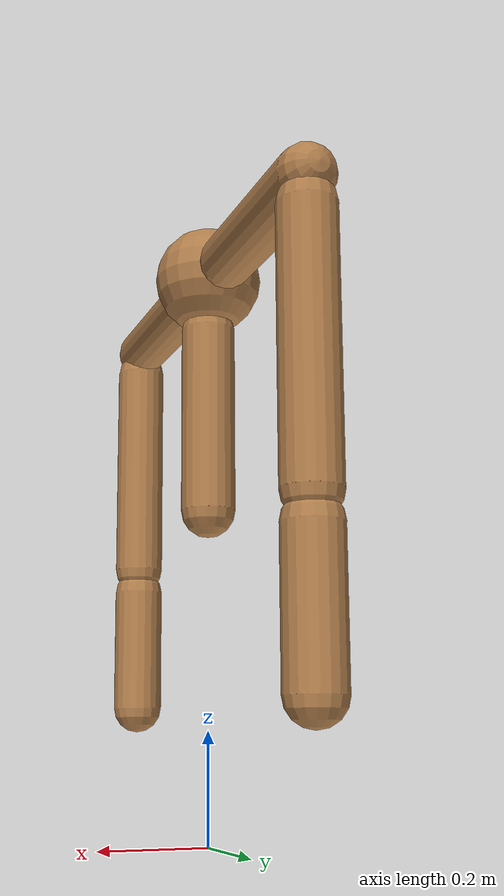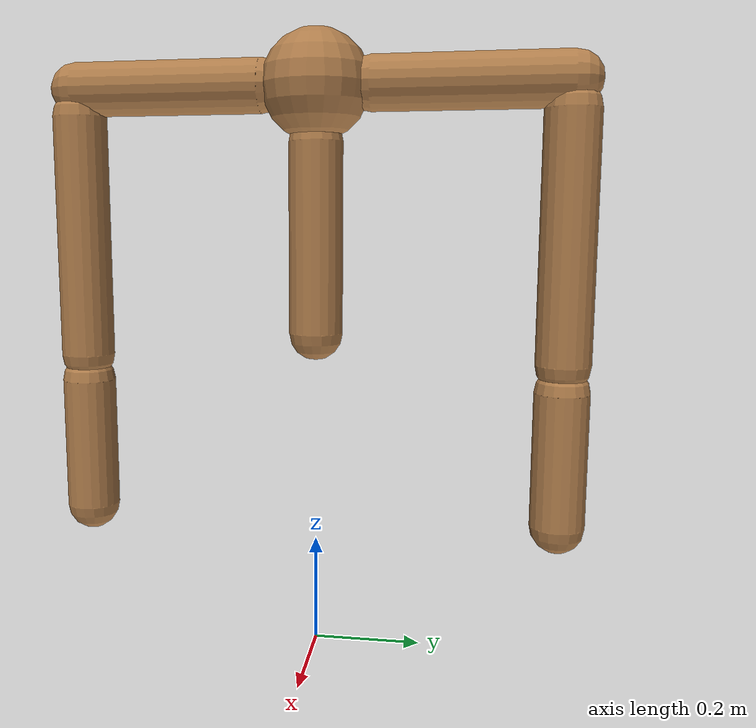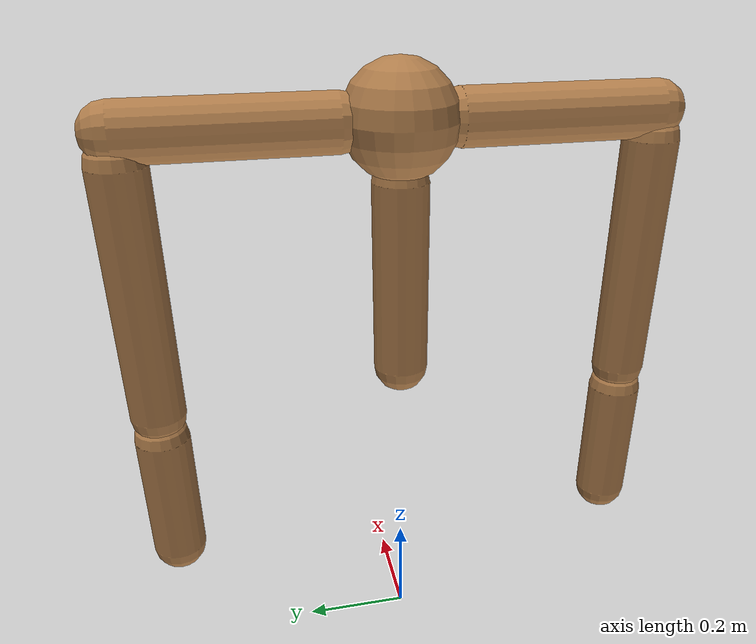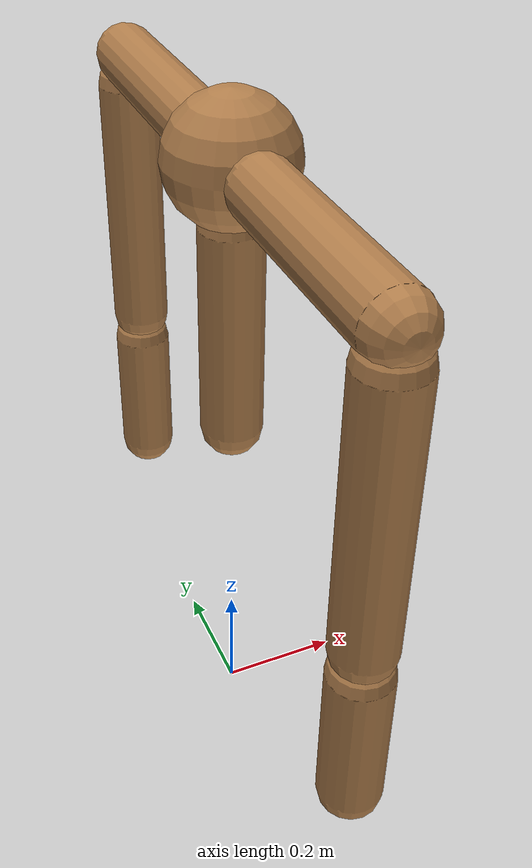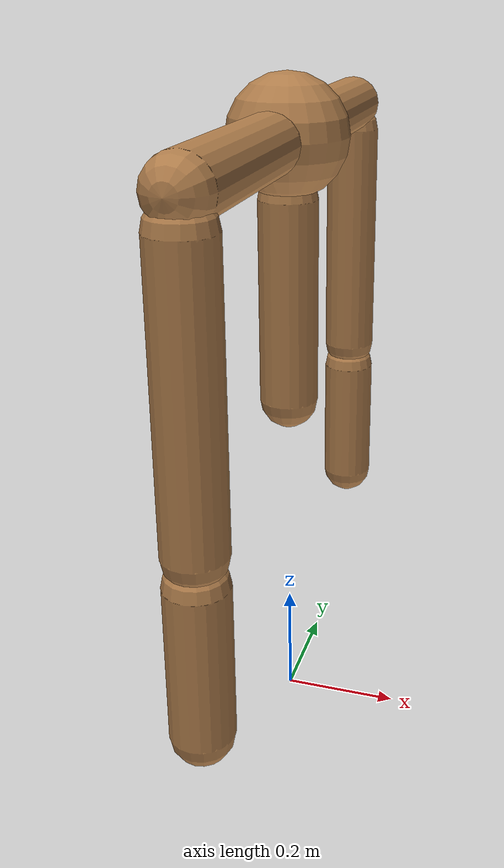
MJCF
<?xml version='1.0' encoding='UTF-8'?>
<!-- Universal Animal Template: unimal -->
<mujoco model="unimal">
  <compiler angle="degree"/>
  <size njmax="2000" nconmax="500"/>
  <option timestep=".005">
    <flag filterparent="disable"/>
  </option>
  <!-- Common defaults to make search space tractable -->
  <default>
    <!-- Define motor defaults -->
    <motor ctrlrange="-1 1" ctrllimited="true"/>
    <!-- Define joint defaults -->
    <default class="normal_joint">
      <joint type="hinge" damping="1" stiffness="1" armature="1" limited="true" range="-120 120" solimplimit="0 0.99 0.01"/>
    </default>
    <default class="walker_joint">
      <joint type="hinge" damping="0.2" stiffness="1" armature=".01" limited="true" range="-120 120" solimplimit="0 0.99 0.01"/>
    </default>
    <default class="stiff_joint">
      <joint type="hinge" damping="5" stiffness="10" armature=".01" limited="true" solimplimit="0 0.99 0.01"/>
    </default>
    <default class="free">
      <joint limited="false" damping="0" armature="0" stiffness="0"/>
    </default>
    <default class="growth_site">
      <site size="1e-6 1e-6 1e-6"/>
    </default>
    <default class="torso_growth_site">
      <site size="1e-6 1e-6 1e-6"/>
    </default>
    <default class="mirror_growth_site">
      <site size="1e-6 1e-6 1e-6"/>
    </default>
    <default class="btm_pos_site">
      <site size="1e-6 1e-6 1e-6"/>
    </default>
    <default class="box_face_site">
      <site size="1e-6 1e-6 1e-6"/>
    </default>
    <default class="imu_vel">
      <site type="box" size="0.05" rgba="1 0 0 0"/>
    </default>
    <default class="touch_site">
      <site group="3" rgba="0 0 1 .3"/>
    </default>
    <default class="food_site">
      <site material="food" size="0.15"/>
    </default>
    <!-- Define geom defaults -->
    <geom type="capsule" condim="3" friction="0.7 0.1 0.1" material="self"/>
  </default>
  <worldbody>
    <light diffuse="1 1 1" directional="true" exponent="1" pos="0 0 8" specular="0.1 0.1 0.1" dir="0 0 -1"/>
    <!-- Programatically generated xml goes here -->
    <body name="torso/0" pos="0 0 1.05">
      <joint name="root" type="free" class="free"/>
      <site name="root" class="imu_vel"/>
      <geom name="torso/0" type="sphere" size="0.1" condim="3" density="700"/>
      <camera name="side" pos="0 -7 2" xyaxes="1 0 0 0 1 2" mode="trackcom"/>
      <site name="torso/0" class="growth_site" pos="0 0 0"/>
      <site name="torso/btm_pos/0" class="btm_pos_site" pos="0 0 -0.1"/>
      <site name="torso/touch/0" class="touch_site" size="0.11"/>
      <site name="torso/vertical/0" class="torso_growth_site" pos="0 0 -0.1"/>
      <body name="limb/0" pos="0.0 0.1 0.0">
        <joint name="limbx/0" type="hinge" class="normal_joint" range="-90 0" pos="0.0 -0.05 0.0" axis="1.0 0.0 0.0"/>
        <geom name="limb/0" type="capsule" fromto="0.0 0.0 0.0 0.0 0.35 0.0" size="0.05" density="600"/>
        <site name="limb/mid/0" class="mirror_growth_site" pos="0.0 0.2 0.0"/>
        <site name="limb/btm/0" class="mirror_growth_site" pos="0.0 0.35 0.0"/>
        <site name="limb/btm_pos/0" class="btm_pos_site" pos="0.0 0.35 0.0"/>
        <site name="limb/touch/0" class="touch_site" size="0.060000000000000005" fromto="0.0 0.0 0.0 0.0 0.35 0.0" type="capsule"/>
        <body name="limb/26" pos="0.0 0.35 -0.05">
          <joint name="limbx/26" type="hinge" class="normal_joint" range="0 30" pos="0.0 0.0 0.05" axis="1.0 0.0 0.0"/>
          <geom name="limb/26" type="capsule" fromto="0.0 0.0 0.0 0.0 0.0 -0.45" size="0.05" density="600"/>
          <site name="limb/mid/26" class="mirror_growth_site" pos="0.0 0.0 -0.25"/>
          <site name="limb/btm/26" class="mirror_growth_site" pos="0.0 0.0 -0.45"/>
          <site name="limb/btm_pos/26" class="btm_pos_site" pos="0.0 0.0 -0.5"/>
          <site name="limb/touch/26" class="touch_site" size="0.060000000000000005" fromto="0.0 0.0 0.0 0.0 0.0 -0.45" type="capsule"/>
          <body name="limb/28" pos="0.0 0.0 -0.5">
            <joint name="limbx/28" type="hinge" class="normal_joint" range="-45 0" pos="0.0 0.0 0.05" axis="1.0 0.0 0.0"/>
            <joint name="limby/28" type="hinge" class="normal_joint" range="-60 0" pos="0.0 0.0 0.05" axis="0.0 1.0 0.0"/>
            <geom name="limb/28" type="capsule" fromto="0.0 0.0 0.0 0.0 0.0 -0.25" size="0.05" density="600"/>
            <site name="limb/mid/28" class="mirror_growth_site" pos="0.0 0.0 -0.15"/>
            <site name="limb/btm/28" class="mirror_growth_site" pos="0.0 0.0 -0.25"/>
            <site name="limb/btm_pos/28" class="btm_pos_site" pos="0.0 0.0 -0.3"/>
            <site name="limb/touch/28" class="touch_site" size="0.060000000000000005" fromto="0.0 0.0 0.0 0.0 0.0 -0.25" type="capsule"/>
          </body>
        </body>
      </body>
      <body name="limb/1" pos="0.0 -0.1 0.0">
        <joint name="limbx/1" type="hinge" class="normal_joint" range="-90 0" pos="0.0 0.05 0.0" axis="1.0 0.0 -0.0"/>
        <geom name="limb/1" type="capsule" fromto="0.0 0.0 0.0 0.0 -0.35 0.0" size="0.05" density="600"/>
        <site name="limb/mid/1" class="mirror_growth_site" pos="0.0 -0.2 0.0"/>
        <site name="limb/btm/1" class="mirror_growth_site" pos="0.0 -0.35 0.0"/>
        <site name="limb/btm_pos/1" class="btm_pos_site" pos="0.0 -0.35 0.0"/>
        <site name="limb/touch/1" class="touch_site" size="0.060000000000000005" fromto="0.0 0.0 0.0 0.0 -0.35 0.0" type="capsule"/>
        <body name="limb/27" pos="0.0 -0.35 -0.05">
          <joint name="limbx/27" type="hinge" class="normal_joint" range="0 30" pos="0.0 0.0 0.05" axis="1.0 0.0 0.0"/>
          <geom name="limb/27" type="capsule" fromto="0.0 0.0 0.0 0.0 0.0 -0.45" size="0.05" density="600"/>
          <site name="limb/mid/27" class="mirror_growth_site" pos="0.0 0.0 -0.25"/>
          <site name="limb/btm/27" class="mirror_growth_site" pos="0.0 0.0 -0.45"/>
          <site name="limb/btm_pos/27" class="btm_pos_site" pos="0.0 0.0 -0.5"/>
          <site name="limb/touch/27" class="touch_site" size="0.060000000000000005" fromto="0.0 0.0 0.0 0.0 0.0 -0.45" type="capsule"/>
          <body name="limb/29" pos="0.0 0.0 -0.5">
            <joint name="limbx/29" type="hinge" class="normal_joint" range="-45 0" pos="0.0 0.0 0.05" axis="1.0 0.0 0.0"/>
            <joint name="limby/29" type="hinge" class="normal_joint" range="-60 0" pos="0.0 0.0 0.05" axis="0.0 1.0 0.0"/>
            <geom name="limb/29" type="capsule" fromto="0.0 0.0 0.0 0.0 0.0 -0.25" size="0.05" density="600"/>
            <site name="limb/mid/29" class="mirror_growth_site" pos="0.0 0.0 -0.15"/>
            <site name="limb/btm/29" class="mirror_growth_site" pos="0.0 0.0 -0.25"/>
            <site name="limb/btm_pos/29" class="btm_pos_site" pos="0.0 0.0 -0.3"/>
            <site name="limb/touch/29" class="touch_site" size="0.060000000000000005" fromto="0.0 0.0 0.0 0.0 0.0 -0.25" type="capsule"/>
          </body>
        </body>
      </body>
      <body name="limb/24" pos="0.0 0.0 -0.1">
        <joint name="limbx/24" type="hinge" class="normal_joint" range="0 60" pos="0.0 0.0 0.05" axis="1.0 0.0 0.0"/>
        <geom name="limb/24" type="capsule" fromto="0.0 0.0 0.0 0.0 0.0 -0.35" size="0.05" density="600"/>
        <site name="limb/mid/24" class="growth_site" pos="0.0 0.0 -0.2"/>
        <site name="limb/btm/24" class="growth_site" pos="0.0 0.0 -0.35"/>
        <site name="limb/btm_pos/24" class="btm_pos_site" pos="0.0 0.0 -0.4"/>
        <site name="limb/touch/24" class="touch_site" size="0.060000000000000005" fromto="0.0 0.0 0.0 0.0 0.0 -0.35" type="capsule"/>
      </body>
    </body>
  </worldbody>
  <actuator>
    <motor joint="limbx/0" gear="150" name="limbx/0"/>
    <motor joint="limbx/26" gear="300" name="limbx/26"/>
    <motor joint="limbx/28" gear="250" name="limbx/28"/>
    <motor joint="limby/28" gear="300" name="limby/28"/>
    <motor joint="limbx/1" gear="150" name="limbx/1"/>
    <motor joint="limbx/27" gear="300" name="limbx/27"/>
    <motor joint="limbx/29" gear="250" name="limbx/29"/>
    <motor joint="limby/29" gear="300" name="limby/29"/>
    <motor joint="limbx/24" gear="150" name="limbx/24"/>
  </actuator>
  <sensor>
    <accelerometer name="torso_accel" site="root"/>
    <gyro name="torso_gyro" site="root"/>
    <velocimeter name="torso_vel" site="root"/>
    <subtreeangmom name="unimal_am" body="torso/0"/>
    <touch name="torso/0" site="torso/touch/0"/>
    <touch name="limb/0" site="limb/touch/0"/>
    <touch name="limb/26" site="limb/touch/26"/>
    <touch name="limb/28" site="limb/touch/28"/>
    <touch name="limb/1" site="limb/touch/1"/>
    <touch name="limb/27" site="limb/touch/27"/>
    <touch name="limb/29" site="limb/touch/29"/>
    <touch name="limb/24" site="limb/touch/24"/>
  </sensor>
  <!-- Add hfield assets -->
  <asset/>
  <!-- List of contacts to exclude -->
  <contact/>
  <!-- Define material, texture etc -->
  <asset>
    <material name="grid" texture="grid" texrepeat="1 1" texuniform="true" reflectance="0.1"/>
    <material name="hfield" texture="hfield" texrepeat="1 1" texuniform="true" reflectance="0.1"/>
    <material name="wall" texture="wall" texrepeat="1 1" texuniform="true" reflectance=".5"/>
    <material name="platform" texture="platform" texrepeat="1 1" texuniform="true" reflectance=".5"/>
    <material name="boundary" texture="boundary" texrepeat="1 1" texuniform="true" reflectance=".5"/>
    <material name="jump" texture="jump" texrepeat="1 1" texuniform="true" reflectance=".5"/>
    <material name="goal" rgba="1 0 0 1"/>
    <material name="food" rgba="0 0 1 1" emission="1"/>
    <material name="init_position" rgba="0 1 0 0.7"/>
    <material name="self" rgba=".7 .5 .3 1"/>
    <material name="self_invisible" rgba=".7 .5 .3 0"/>
    <material name="self_default" rgba=".7 .5 .3 1"/>
    <material name="self_highlight" rgba="0 .5 .3 1"/>
    <material name="effector" rgba=".7 .4 .2 1"/>
    <material name="effector_default" rgba=".7 .4 .2 1"/>
    <material name="effector_highlight" rgba="0 .5 .3 1"/>
    <material name="decoration" rgba=".3 .5 .7 1"/>
    <material name="eye" rgba="0 .2 1 1"/>
    <material name="target" rgba=".6 .3 .3 1"/>
    <material name="target_default" rgba=".6 .3 .3 1"/>
    <material name="target_highlight" rgba=".6 .3 .3 .4"/>
    <material name="site" rgba=".5 .5 .5 .3"/>
    <material name="ball" texture="ball"/>
  </asset>
  <asset>
    <texture name="grid" type="2d" builtin="checker" rgb1="0.4 0.4 0.4" rgb2="0.4 0.4 0.4" width="300" height="300" mark="edge" markrgb="0.2 0.2 0.2"/>
    <texture name="hfield" type="2d" builtin="checker" rgb1="0.4 0.4 0.4" rgb2="0.4 0.4 0.4" width="300" height="300" mark="edge" markrgb="0.2 0.2 0.2"/>
    <texture name="wall" type="2d" builtin="flat" rgb1="0.9 0.7 0" rgb2="0.9 0.7 0" width="300" height="300"/>
    <texture name="platform" type="2d" builtin="flat" rgb1="0.3 0 0.8" rgb2="0.3 0 0.8" width="300" height="300"/>
    <texture name="boundary" type="2d" builtin="flat" rgb1="0.3 0.3 0.3" rgb2="0.3 0.3 0.3" width="300" height="300"/>
    <texture name="jump" type="2d" builtin="flat" rgb1="0.3 0.3 0.3" rgb2="0.3 0.3 0.3" width="300" height="300"/>
    <texture name="skybox" type="skybox" builtin="gradient" rgb1="1 1 1" rgb2="0.6 0.6 0.6" width="800" height="800"/>
    <texture name="ball" builtin="checker" mark="cross" width="151" height="151" rgb1="0.1 0.1 0.1" rgb2="0.9 0.9 0.9" markrgb="1 1 1"/>
  </asset>
  <visual>
    <headlight ambient="0.6 0.6 0.6" diffuse="0.3 0.3 0.3" specular="0 0 0"/>
    <map znear=".01" shadowclip="0.5"/>
    <quality shadowsize="16384"/>
  </visual>
</mujoco>
